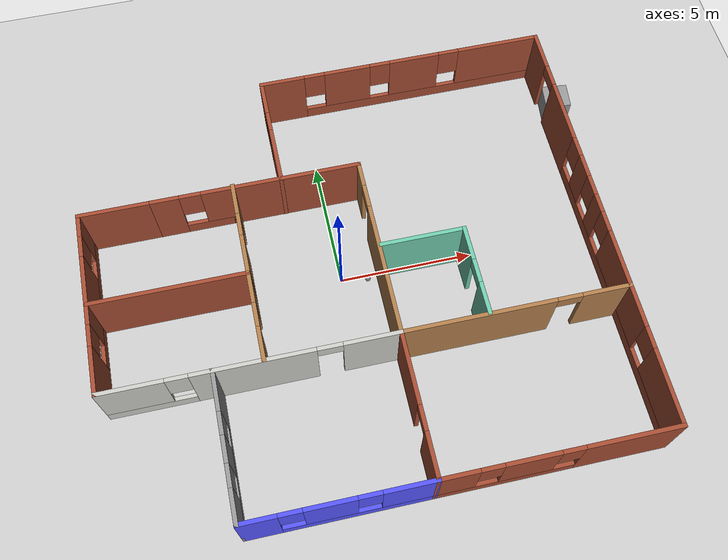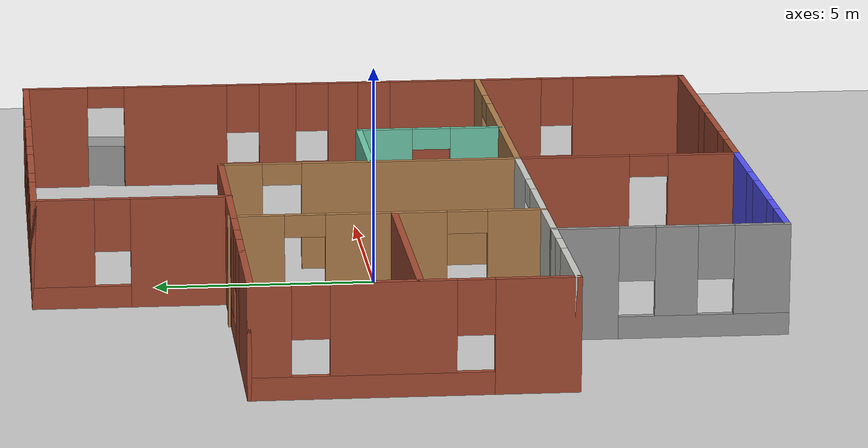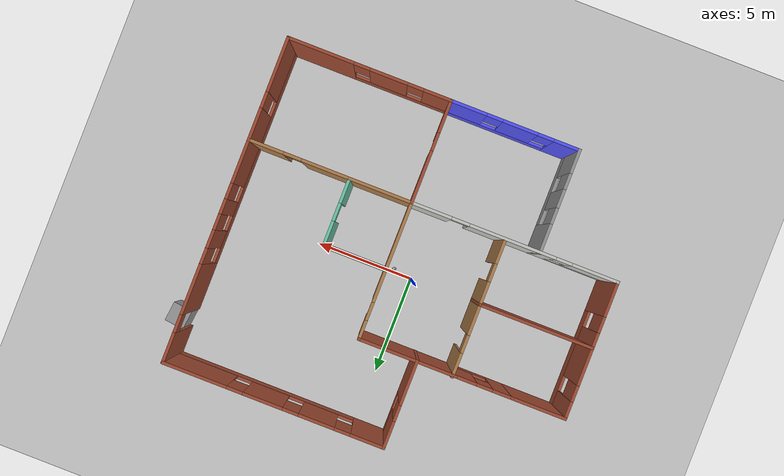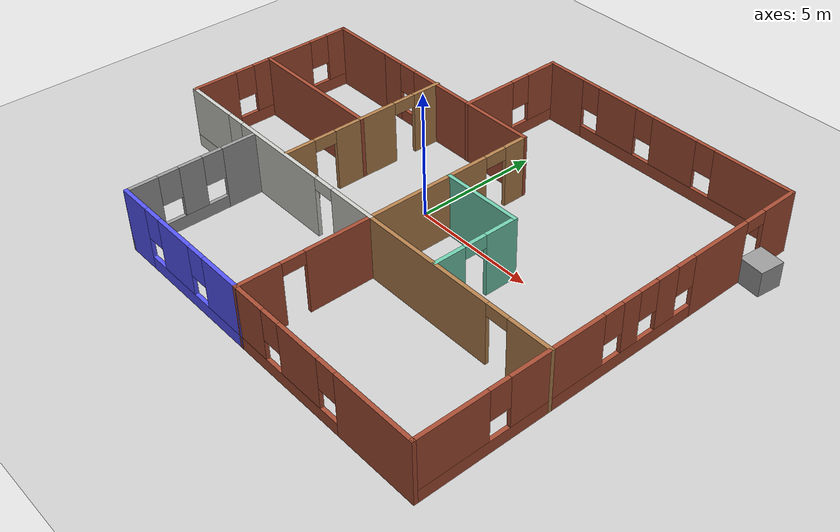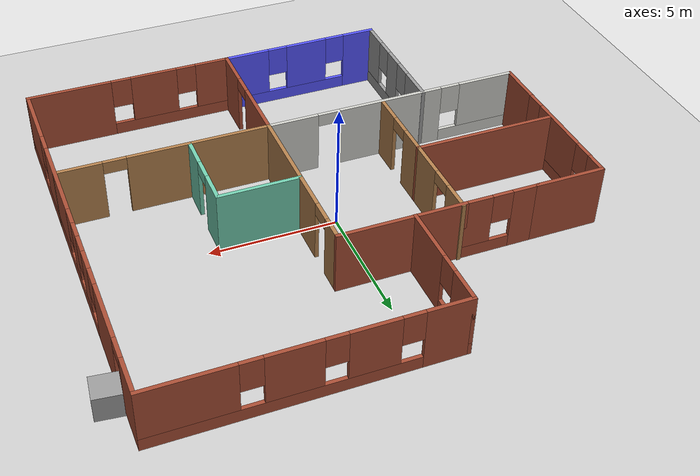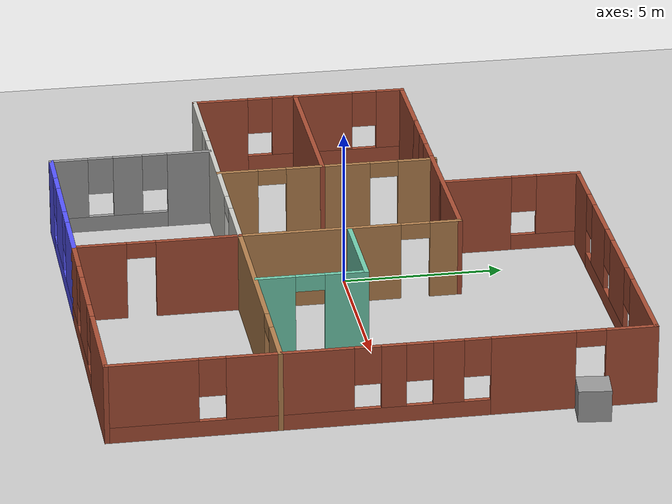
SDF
<sdf version="1.6">
 <world name="default">
  <plugin name="hello" filename="libhello.so"/>
  <light name="sun" type="directional">
   <pose>0 0 10 0 -0 0</pose>
   <diffuse>0.8 0.8 0.8 1</diffuse>
   <specular>0.2 0.2 0.2 1</specular>
   <attenuation>
    <range>1000</range>
    <constant>0.9</constant>
    <linear>0.01</linear>
    <quadratic>0.001</quadratic>
   </attenuation>
   <direction>-0.5 0.1 -0.9</direction>
  </light>
  <model name="ground_plane">
   <static>1</static>
   <link name="link">
    <collision name="collision">
     <geometry><plane><normal>0 0 1</normal><size>100 100</size></plane></geometry>
     <surface>
      <contact><collide_bitmask>65535</collide_bitmask></contact>
      <friction><ode><mu>100</mu><mu2>50</mu2></ode></friction>
     </surface>
    </collision>
    <visual name="visual">
     <cast_shadows>0</cast_shadows>
     <geometry><plane><normal>0 0 1</normal><size>100 100</size></plane></geometry>
     <material>
      <script><uri>file://media/materials/scripts/gazebo.material</uri><name>Gazebo/Grey</name></script>
     </material>
    </visual>
   </link>
  </model>
  <gravity>0 0 -9.8</gravity>
  <magnetic_field>6e-06 2.3e-05 -4.2e-05</magnetic_field>
  <atmosphere type="adiabatic"/>
  <physics name="default_physics" default="0" type="ode">
   <max_step_size>0.001</max_step_size>
   <real_time_factor>1</real_time_factor>
   <real_time_update_rate>1000</real_time_update_rate>
  </physics>
  <scene><ambient>0.4 0.4 0.4 1</ambient><background>0.7 0.7 0.7 1</background><shadows>1</shadows></scene>
  <spherical_coordinates>
   <surface_model>EARTH_WGS84</surface_model>
   <latitude_deg>0</latitude_deg>
   <longitude_deg>0</longitude_deg>
   <elevation>0</elevation>
   <heading_deg>0</heading_deg>
  </spherical_coordinates>
  <model name="my_building">
   <pose>0.3259 -0.4257 0 0 -0 0</pose>
   <link name="Wall_101">
    <pose>-1.83329 5.97867 0 0 -0 1.5708</pose>
    <visual name="Wall_101_Visual_0">
     <pose>-1.10979 0 1.25 0 -0 0</pose>
     <geometry><box><size>2.28042 0.15 2.5</size></box></geometry>
     <material>
      <script><uri>file://media/materials/scripts/gazebo.material</uri><name>Gazebo/Bricks</name></script>
      <ambient>1 1 1 1</ambient>
     </material>
     <meta><layer>0</layer></meta>
    </visual>
    <collision name="Wall_101_Collision_0">
     <geometry><box><size>2.28042 0.15 2.5</size></box></geometry>
     <pose>-1.10979 0 1.25 0 -0 0</pose>
    </collision>
    <visual name="Wall_101_Visual_1">
     <pose>1.14021 0 0.25 0 -0 0</pose>
     <geometry><box><size>2.21958 0.15 0.5</size></box></geometry>
     <material>
      <script><uri>file://media/materials/scripts/gazebo.material</uri><name>Gazebo/Bricks</name></script>
      <ambient>1 1 1 1</ambient>
     </material>
     <meta><layer>0</layer></meta>
    </visual>
    <collision name="Wall_101_Collision_1">
     <geometry><box><size>2.21958 0.15 0.5</size></box></geometry>
     <pose>1.14021 0 0.25 0 -0 0</pose>
    </collision>
    <visual name="Wall_101_Visual_2">
     <pose>1.54021 0 1.5 0 -0 0</pose>
     <geometry><box><size>1.41958 0.15 2</size></box></geometry>
     <material>
      <script><uri>file://media/materials/scripts/gazebo.material</uri><name>Gazebo/Bricks</name></script>
      <ambient>1 1 1 1</ambient>
     </material>
     <meta><layer>0</layer></meta>
    </visual>
    <collision name="Wall_101_Collision_2">
     <geometry><box><size>1.41958 0.15 2</size></box></geometry>
     <pose>1.54021 0 1.5 0 -0 0</pose>
    </collision>
    <visual name="Wall_101_Visual_3">
     <pose>0.430422 0 1.9 0 -0 0</pose>
     <geometry><box><size>0.8 0.15 1.2</size></box></geometry>
     <material>
      <script><uri>file://media/materials/scripts/gazebo.material</uri><name>Gazebo/Bricks</name></script>
      <ambient>1 1 1 1</ambient>
     </material>
     <meta><layer>0</layer></meta>
    </visual>
    <collision name="Wall_101_Collision_3">
     <geometry><box><size>0.8 0.15 1.2</size></box></geometry>
     <pose>0.430422 0 1.9 0 -0 0</pose>
    </collision>
   </link>
   <link name="Wall_102">
    <pose>3.71671 8.15367 0 0 -0 0</pose>
    <visual name="Wall_102_Visual_0">
     <pose>-4.74488 0 1.25 0 -0 0</pose>
     <geometry><box><size>1.76025 0.15 2.5</size></box></geometry>
     <material>
      <script><uri>file://media/materials/scripts/gazebo.material</uri><name>Gazebo/Bricks</name></script>
      <ambient>1 1 1 1</ambient>
     </material>
     <meta><layer>0</layer></meta>
    </visual>
    <collision name="Wall_102_Collision_0">
     <geometry><box><size>1.76025 0.15 2.5</size></box></geometry>
     <pose>-4.74488 0 1.25 0 -0 0</pose>
    </collision>
    <visual name="Wall_102_Visual_1">
     <pose>0.880123 0 0.25 0 -0 0</pose>
     <geometry><box><size>9.48976 0.15 0.5</size></box></geometry>
     <material>
      <script><uri>file://media/materials/scripts/gazebo.material</uri><name>Gazebo/Bricks</name></script>
      <ambient>1 1 1 1</ambient>
     </material>
     <meta><layer>0</layer></meta>
    </visual>
    <collision name="Wall_102_Collision_1">
     <geometry><box><size>9.48976 0.15 0.5</size></box></geometry>
     <pose>0.880123 0 0.25 0 -0 0</pose>
    </collision>
    <visual name="Wall_102_Visual_2">
     <pose>-2.15608 0 1.5 0 -0 0</pose>
     <geometry><box><size>1.81735 0.15 2</size></box></geometry>
     <material>
      <script><uri>file://media/materials/scripts/gazebo.material</uri><name>Gazebo/Bricks</name></script>
      <ambient>1 1 1 1</ambient>
     </material>
     <meta><layer>0</layer></meta>
    </visual>
    <collision name="Wall_102_Collision_2">
     <geometry><box><size>1.81735 0.15 2</size></box></geometry>
     <pose>-2.15608 0 1.5 0 -0 0</pose>
    </collision>
    <visual name="Wall_102_Visual_3">
     <pose>0.547086 0 1.5 0 -0 0</pose>
     <geometry><box><size>1.98898 0.15 2</size></box></geometry>
     <material>
      <script><uri>file://media/materials/scripts/gazebo.material</uri><name>Gazebo/Bricks</name></script>
      <ambient>1 1 1 1</ambient>
     </material>
     <meta><layer>0</layer></meta>
    </visual>
    <collision name="Wall_102_Collision_3">
     <geometry><box><size>1.98898 0.15 2</size></box></geometry>
     <pose>0.547086 0 1.5 0 -0 0</pose>
    </collision>
    <visual name="Wall_102_Visual_4">
     <pose>3.98329 0 1.5 0 -0 0</pose>
     <geometry><box><size>3.28342 0.15 2</size></box></geometry>
     <material>
      <script><uri>file://media/materials/scripts/gazebo.material</uri><name>Gazebo/Bricks</name></script>
      <ambient>1 1 1 1</ambient>
     </material>
     <meta><layer>0</layer></meta>
    </visual>
    <collision name="Wall_102_Collision_4">
     <geometry><box><size>3.28342 0.15 2</size></box></geometry>
     <pose>3.98329 0 1.5 0 -0 0</pose>
    </collision>
    <visual name="Wall_102_Visual_5">
     <pose>-3.46475 0 1.9 0 -0 0</pose>
     <geometry><box><size>0.8 0.15 1.2</size></box></geometry>
     <material>
      <script><uri>file://media/materials/scripts/gazebo.material</uri><name>Gazebo/Bricks</name></script>
      <ambient>1 1 1 1</ambient>
     </material>
     <meta><layer>0</layer></meta>
    </visual>
    <collision name="Wall_102_Collision_5">
     <geometry><box><size>0.8 0.15 1.2</size></box></geometry>
     <pose>-3.46475 0 1.9 0 -0 0</pose>
    </collision>
    <visual name="Wall_102_Visual_6">
     <pose>-0.847404 0 1.9 0 -0 0</pose>
     <geometry><box><size>0.8 0.15 1.2</size></box></geometry>
     <material>
      <script><uri>file://media/materials/scripts/gazebo.material</uri><name>Gazebo/Bricks</name></script>
      <ambient>1 1 1 1</ambient>
     </material>
     <meta><layer>0</layer></meta>
    </visual>
    <collision name="Wall_102_Collision_6">
     <geometry><box><size>0.8 0.15 1.2</size></box></geometry>
     <pose>-0.847404 0 1.9 0 -0 0</pose>
    </collision>
    <visual name="Wall_102_Visual_7">
     <pose>1.94158 0 1.9 0 -0 0</pose>
     <geometry><box><size>0.8 0.15 1.2</size></box></geometry>
     <material>
      <script><uri>file://media/materials/scripts/gazebo.material</uri><name>Gazebo/Bricks</name></script>
      <ambient>1 1 1 1</ambient>
     </material>
     <meta><layer>0</layer></meta>
    </visual>
    <collision name="Wall_102_Collision_7">
     <geometry><box><size>0.8 0.15 1.2</size></box></geometry>
     <pose>1.94158 0 1.9 0 -0 0</pose>
    </collision>
   </link>
   <link name="Wall_103">
    <pose>9.26671 0.021332 0 0 0 -1.5708</pose>
    <visual name="Wall_103_Visual_0">
     <pose>-7.41528 0 1.25 0 -0 0</pose>
     <geometry><box><size>1.58411 0.15 2.5</size></box></geometry>
     <material>
      <script><uri>file://media/materials/scripts/gazebo.material</uri><name>Gazebo/Bricks</name></script>
      <ambient>1 1 1 1</ambient>
     </material>
     <meta><layer>0</layer></meta>
    </visual>
    <collision name="Wall_103_Collision_0">
     <geometry><box><size>1.58411 0.15 2.5</size></box></geometry>
     <pose>-7.41528 0 1.25 0 -0 0</pose>
    </collision>
    <visual name="Wall_103_Visual_1">
     <pose>-4.45338 0 1.25 0 -0 0</pose>
     <geometry><box><size>2.53968 0.15 2.5</size></box></geometry>
     <material>
      <script><uri>file://media/materials/scripts/gazebo.material</uri><name>Gazebo/Bricks</name></script>
      <ambient>1 1 1 1</ambient>
     </material>
     <meta><layer>0</layer></meta>
    </visual>
    <collision name="Wall_103_Collision_1">
     <geometry><box><size>2.53968 0.15 2.5</size></box></geometry>
     <pose>-4.45338 0 1.25 0 -0 0</pose>
    </collision>
    <visual name="Wall_103_Visual_2">
     <pose>2.5119 0 0.25 0 -0 0</pose>
     <geometry><box><size>11.3909 0.15 0.5</size></box></geometry>
     <material>
      <script><uri>file://media/materials/scripts/gazebo.material</uri><name>Gazebo/Bricks</name></script>
      <ambient>1 1 1 1</ambient>
     </material>
     <meta><layer>0</layer></meta>
    </visual>
    <collision name="Wall_103_Collision_2">
     <geometry><box><size>11.3909 0.15 0.5</size></box></geometry>
     <pose>2.5119 0 0.25 0 -0 0</pose>
    </collision>
    <visual name="Wall_103_Visual_3">
     <pose>-1.92539 0 1.5 0 -0 0</pose>
     <geometry><box><size>0.916295 0.15 2</size></box></geometry>
     <material>
      <script><uri>file://media/materials/scripts/gazebo.material</uri><name>Gazebo/Bricks</name></script>
      <ambient>1 1 1 1</ambient>
     </material>
     <meta><layer>0</layer></meta>
    </visual>
    <collision name="Wall_103_Collision_3">
     <geometry><box><size>0.916295 0.15 2</size></box></geometry>
     <pose>-1.92539 0 1.5 0 -0 0</pose>
    </collision>
    <visual name="Wall_103_Visual_4">
     <pose>-0.294908 0 1.5 0 -0 0</pose>
     <geometry><box><size>0.744666 0.15 2</size></box></geometry>
     <material>
      <script><uri>file://media/materials/scripts/gazebo.material</uri><name>Gazebo/Bricks</name></script>
      <ambient>1 1 1 1</ambient>
     </material>
     <meta><layer>0</layer></meta>
    </visual>
    <collision name="Wall_103_Collision_4">
     <geometry><box><size>0.744666 0.15 2</size></box></geometry>
     <pose>-0.294908 0 1.5 0 -0 0</pose>
    </collision>
    <visual name="Wall_103_Visual_5">
     <pose>2.76753 0 1.5 0 -0 0</pose>
     <geometry><box><size>3.78021 0.15 2</size></box></geometry>
     <material>
      <script><uri>file://media/materials/scripts/gazebo.material</uri><name>Gazebo/Bricks</name></script>
      <ambient>1 1 1 1</ambient>
     </material>
     <meta><layer>0</layer></meta>
    </visual>
    <collision name="Wall_103_Collision_5">
     <geometry><box><size>3.78021 0.15 2</size></box></geometry>
     <pose>2.76753 0 1.5 0 -0 0</pose>
    </collision>
    <visual name="Wall_103_Visual_6">
     <pose>6.83249 0 1.5 0 -0 0</pose>
     <geometry><box><size>2.7497 0.15 2</size></box></geometry>
     <material>
      <script><uri>file://media/materials/scripts/gazebo.material</uri><name>Gazebo/Bricks</name></script>
      <ambient>1 1 1 1</ambient>
     </material>
     <meta><layer>0</layer></meta>
    </visual>
    <collision name="Wall_103_Collision_6">
     <geometry><box><size>2.7497 0.15 2</size></box></geometry>
     <pose>6.83249 0 1.5 0 -0 0</pose>
    </collision>
    <visual name="Wall_103_Visual_7">
     <pose>-2.78354 0 1.9 0 -0 0</pose>
     <geometry><box><size>0.8 0.15 1.2</size></box></geometry>
     <material>
      <script><uri>file://media/materials/scripts/gazebo.material</uri><name>Gazebo/Bricks</name></script>
      <ambient>1 1 1 1</ambient>
     </material>
     <meta><layer>0</layer></meta>
    </visual>
    <collision name="Wall_103_Collision_7">
     <geometry><box><size>0.8 0.15 1.2</size></box></geometry>
     <pose>-2.78354 0 1.9 0 -0 0</pose>
    </collision>
    <visual name="Wall_103_Visual_8">
     <pose>-1.06724 0 1.9 0 -0 0</pose>
     <geometry><box><size>0.8 0.15 1.2</size></box></geometry>
     <material>
      <script><uri>file://media/materials/scripts/gazebo.material</uri><name>Gazebo/Bricks</name></script>
      <ambient>1 1 1 1</ambient>
     </material>
     <meta><layer>0</layer></meta>
    </visual>
    <collision name="Wall_103_Collision_8">
     <geometry><box><size>0.8 0.15 1.2</size></box></geometry>
     <pose>-1.06724 0 1.9 0 -0 0</pose>
    </collision>
    <visual name="Wall_103_Visual_9">
     <pose>0.477424 0 1.9 0 -0 0</pose>
     <geometry><box><size>0.8 0.15 1.2</size></box></geometry>
     <material>
      <script><uri>file://media/materials/scripts/gazebo.material</uri><name>Gazebo/Bricks</name></script>
      <ambient>1 1 1 1</ambient>
     </material>
     <meta><layer>0</layer></meta>
    </visual>
    <collision name="Wall_103_Collision_9">
     <geometry><box><size>0.8 0.15 1.2</size></box></geometry>
     <pose>0.477424 0 1.9 0 -0 0</pose>
    </collision>
    <visual name="Wall_103_Visual_10">
     <pose>5.05763 0 1.9 0 -0 0</pose>
     <geometry><box><size>0.8 0.15 1.2</size></box></geometry>
     <material>
      <script><uri>file://media/materials/scripts/gazebo.material</uri><name>Gazebo/Bricks</name></script>
      <ambient>1 1 1 1</ambient>
     </material>
     <meta><layer>0</layer></meta>
    </visual>
    <collision name="Wall_103_Collision_10">
     <geometry><box><size>0.8 0.15 1.2</size></box></geometry>
     <pose>5.05763 0 1.9 0 -0 0</pose>
    </collision>
    <visual name="Wall_103_Visual_11">
     <pose>-6.17322 0 2.25 0 -0 0</pose>
     <geometry><box><size>0.9 0.15 0.5</size></box></geometry>
     <material>
      <script><uri>file://media/materials/scripts/gazebo.material</uri><name>Gazebo/Bricks</name></script>
      <ambient>1 1 1 1</ambient>
     </material>
     <meta><layer>0</layer></meta>
    </visual>
    <collision name="Wall_103_Collision_11">
     <geometry><box><size>0.9 0.15 0.5</size></box></geometry>
     <pose>-6.17322 0 2.25 0 -0 0</pose>
    </collision>
   </link>
   <link name="Wall_104">
    <pose>5.1749 -8.15365 0 0 -0 3.14159</pose>
    <visual name="Wall_104_Visual_0">
     <pose>-2.47424 0 1.25 0 -0 0</pose>
     <geometry><box><size>3.38515 0.15 2.5</size></box></geometry>
     <material>
      <script><uri>file://media/materials/scripts/gazebo.material</uri><name>Gazebo/Bricks</name></script>
      <ambient>1 1 1 1</ambient>
     </material>
     <meta><layer>0</layer></meta>
    </visual>
    <collision name="Wall_104_Collision_0">
     <geometry><box><size>3.38515 0.15 2.5</size></box></geometry>
     <pose>-2.47424 0 1.25 0 -0 0</pose>
    </collision>
    <visual name="Wall_104_Visual_1">
     <pose>1.69257 0 0.25 0 -0 0</pose>
     <geometry><box><size>4.94847 0.15 0.5</size></box></geometry>
     <material>
      <script><uri>file://media/materials/scripts/gazebo.material</uri><name>Gazebo/Bricks</name></script>
      <ambient>1 1 1 1</ambient>
     </material>
     <meta><layer>0</layer></meta>
    </visual>
    <collision name="Wall_104_Collision_1">
     <geometry><box><size>4.94847 0.15 0.5</size></box></geometry>
     <pose>1.69257 0 0.25 0 -0 0</pose>
    </collision>
    <visual name="Wall_104_Visual_2">
     <pose>0.969374 0 1.5 0 -0 0</pose>
     <geometry><box><size>1.90207 0.15 2</size></box></geometry>
     <material>
      <script><uri>file://media/materials/scripts/gazebo.material</uri><name>Gazebo/Bricks</name></script>
      <ambient>1 1 1 1</ambient>
     </material>
     <meta><layer>0</layer></meta>
    </visual>
    <collision name="Wall_104_Collision_2">
     <geometry><box><size>1.90207 0.15 2</size></box></geometry>
     <pose>0.969374 0 1.5 0 -0 0</pose>
    </collision>
    <visual name="Wall_104_Visual_3">
     <pose>3.44361 0 1.5 0 -0 0</pose>
     <geometry><box><size>1.4464 0.15 2</size></box></geometry>
     <material>
      <script><uri>file://media/materials/scripts/gazebo.material</uri><name>Gazebo/Bricks</name></script>
      <ambient>1 1 1 1</ambient>
     </material>
     <meta><layer>0</layer></meta>
    </visual>
    <collision name="Wall_104_Collision_3">
     <geometry><box><size>1.4464 0.15 2</size></box></geometry>
     <pose>3.44361 0 1.5 0 -0 0</pose>
    </collision>
    <visual name="Wall_104_Visual_4">
     <pose>-0.381661 0 1.9 0 -0 0</pose>
     <geometry><box><size>0.8 0.15 1.2</size></box></geometry>
     <material>
      <script><uri>file://media/materials/scripts/gazebo.material</uri><name>Gazebo/Bricks</name></script>
      <ambient>1 1 1 1</ambient>
     </material>
     <meta><layer>0</layer></meta>
    </visual>
    <collision name="Wall_104_Collision_4">
     <geometry><box><size>0.8 0.15 1.2</size></box></geometry>
     <pose>-0.381661 0 1.9 0 -0 0</pose>
    </collision>
    <visual name="Wall_104_Visual_5">
     <pose>2.32041 0 1.9 0 -0 0</pose>
     <geometry><box><size>0.8 0.15 1.2</size></box></geometry>
     <material>
      <script><uri>file://media/materials/scripts/gazebo.material</uri><name>Gazebo/Bricks</name></script>
      <ambient>1 1 1 1</ambient>
     </material>
     <meta><layer>0</layer></meta>
    </visual>
    <collision name="Wall_104_Collision_5">
     <geometry><box><size>0.8 0.15 1.2</size></box></geometry>
     <pose>2.32041 0 1.9 0 -0 0</pose>
    </collision>
   </link>
   <link name="Wall_105">
    <pose>1.0831 -5.57313 0 0 -0 1.5708</pose>
    <visual name="Wall_105_Visual_0">
     <pose>-1.79077 0 1.25 0 -0 0</pose>
     <geometry><box><size>1.64412 0.15 2.5</size></box></geometry>
     <material>
      <script><uri>file://media/materials/scripts/gazebo.material</uri><name>Gazebo/Bricks</name></script>
      <ambient>1 1 1 1</ambient>
     </material>
     <meta><layer>0</layer></meta>
    </visual>
    <collision name="Wall_105_Collision_0">
     <geometry><box><size>1.64412 0.15 2.5</size></box></geometry>
     <pose>-1.79077 0 1.25 0 -0 0</pose>
    </collision>
    <visual name="Wall_105_Visual_1">
     <pose>1.27206 0 1.25 0 -0 0</pose>
     <geometry><box><size>2.68155 0.15 2.5</size></box></geometry>
     <material>
      <script><uri>file://media/materials/scripts/gazebo.material</uri><name>Gazebo/Bricks</name></script>
      <ambient>1 1 1 1</ambient>
     </material>
     <meta><layer>0</layer></meta>
    </visual>
    <collision name="Wall_105_Collision_1">
     <geometry><box><size>2.68155 0.15 2.5</size></box></geometry>
     <pose>1.27206 0 1.25 0 -0 0</pose>
    </collision>
    <visual name="Wall_105_Visual_2">
     <pose>-0.518712 0 2.25 0 -0 0</pose>
     <geometry><box><size>0.9 0.15 0.5</size></box></geometry>
     <material>
      <script><uri>file://media/materials/scripts/gazebo.material</uri><name>Gazebo/Bricks</name></script>
      <ambient>1 1 1 1</ambient>
     </material>
     <meta><layer>0</layer></meta>
    </visual>
    <collision name="Wall_105_Collision_2">
     <geometry><box><size>0.9 0.15 0.5</size></box></geometry>
     <pose>-0.518712 0 2.25 0 -0 0</pose>
    </collision>
   </link>
   <link name="Wall_107">
    <pose>5.1751 -3.0353 0 0 -0 0</pose>
    <visual name="Wall_107_Visual_0">
     <pose>-1.35884 0 1.25 0 -0 0</pose>
     <geometry><box><size>5.61594 0.15 2.5</size></box></geometry>
     <material>
      <script><uri>file://media/materials/scripts/gazebo.material</uri><name>Gazebo/Wood</name></script>
      <ambient>1 1 1 1</ambient>
     </material>
     <meta><layer>0</layer></meta>
    </visual>
    <collision name="Wall_107_Collision_0">
     <geometry><box><size>5.61594 0.15 2.5</size></box></geometry>
     <pose>-1.35884 0 1.25 0 -0 0</pose>
    </collision>
    <visual name="Wall_107_Visual_1">
     <pose>3.25797 0 1.25 0 -0 0</pose>
     <geometry><box><size>1.81767 0.15 2.5</size></box></geometry>
     <material>
      <script><uri>file://media/materials/scripts/gazebo.material</uri><name>Gazebo/Wood</name></script>
      <ambient>1 1 1 1</ambient>
     </material>
     <meta><layer>0</layer></meta>
    </visual>
    <collision name="Wall_107_Collision_1">
     <geometry><box><size>1.81767 0.15 2.5</size></box></geometry>
     <pose>3.25797 0 1.25 0 -0 0</pose>
    </collision>
    <visual name="Wall_107_Visual_2">
     <pose>1.89914 0 2.25 0 -0 0</pose>
     <geometry><box><size>0.9 0.15 0.5</size></box></geometry>
     <material>
      <script><uri>file://media/materials/scripts/gazebo.material</uri><name>Gazebo/Wood</name></script>
      <ambient>1 1 1 1</ambient>
     </material>
     <meta><layer>0</layer></meta>
    </visual>
    <collision name="Wall_107_Collision_2">
     <geometry><box><size>0.9 0.15 0.5</size></box></geometry>
     <pose>1.89914 0 2.25 0 -0 0</pose>
    </collision>
   </link>
   <link name="Wall_112">
    <collision name="Wall_112_Collision">
     <geometry><box><size>5.75 0.15 2.5</size></box></geometry>
     <pose>0 0 1.25 0 -0 0</pose>
    </collision>
    <visual name="Wall_112_Visual">
     <pose>0 0 1.25 0 -0 0</pose>
     <geometry><box><size>5.75 0.15 2.5</size></box></geometry>
     <material>
      <script><uri>file://media/materials/scripts/gazebo.material</uri><name>Gazebo/Bricks</name></script>
      <ambient>1 1 1 1</ambient>
     </material>
     <meta><layer>0</layer></meta>
    </visual>
    <pose>-6.43074 0.273517 0 0 -0 6.6e-05</pose>
   </link>
   <link name="Wall_113">
    <pose>-3.6309 -1.3808 0 0 0 -1.5708</pose>
    <visual name="Wall_113_Visual_0">
     <pose>-1.11174 0 1.25 0 -0 0</pose>
     <geometry><box><size>1.23552 0.15 2.5</size></box></geometry>
     <material>
      <script><uri>file://media/materials/scripts/gazebo.material</uri><name>Gazebo/Wood</name></script>
      <ambient>1 1 1 1</ambient>
     </material>
     <meta><layer>0</layer></meta>
    </visual>
    <collision name="Wall_113_Collision_0">
     <geometry><box><size>1.23552 0.15 2.5</size></box></geometry>
     <pose>-1.11174 0 1.25 0 -0 0</pose>
    </collision>
    <visual name="Wall_113_Visual_1">
     <pose>1.06776 0 1.25 0 -0 0</pose>
     <geometry><box><size>1.32347 0.15 2.5</size></box></geometry>
     <material>
      <script><uri>file://media/materials/scripts/gazebo.material</uri><name>Gazebo/Wood</name></script>
      <ambient>1 1 1 1</ambient>
     </material>
     <meta><layer>0</layer></meta>
    </visual>
    <collision name="Wall_113_Collision_1">
     <geometry><box><size>1.32347 0.15 2.5</size></box></geometry>
     <pose>1.06776 0 1.25 0 -0 0</pose>
    </collision>
    <visual name="Wall_113_Visual_2">
     <pose>-0.043975 0 2.25 0 -0 0</pose>
     <geometry><box><size>0.9 0.15 0.5</size></box></geometry>
     <material>
      <script><uri>file://media/materials/scripts/gazebo.material</uri><name>Gazebo/Wood</name></script>
      <ambient>1 1 1 1</ambient>
     </material>
     <meta><layer>0</layer></meta>
    </visual>
    <collision name="Wall_113_Collision_2">
     <geometry><box><size>0.9 0.15 0.5</size></box></geometry>
     <pose>-0.043975 0 2.25 0 -0 0</pose>
    </collision>
   </link>
   <link name="Wall_119">
    <pose>-3.63074 2.07352 0 0 -0 1.57071</pose>
    <visual name="Wall_119_Visual_0">
     <pose>-1.07564 0 1.25 0 -0 0</pose>
     <geometry><box><size>1.59872 0.15 2.5</size></box></geometry>
     <material>
      <script><uri>file://media/materials/scripts/gazebo.material</uri><name>Gazebo/Wood</name></script>
      <ambient>1 1 1 1</ambient>
     </material>
     <meta><layer>0</layer></meta>
    </visual>
    <collision name="Wall_119_Collision_0">
     <geometry><box><size>1.59872 0.15 2.5</size></box></geometry>
     <pose>-1.07564 0 1.25 0 -0 0</pose>
    </collision>
    <visual name="Wall_119_Visual_1">
     <pose>1.24936 0 1.25 0 -0 0</pose>
     <geometry><box><size>1.25128 0.15 2.5</size></box></geometry>
     <material>
      <script><uri>file://media/materials/scripts/gazebo.material</uri><name>Gazebo/Wood</name></script>
      <ambient>1 1 1 1</ambient>
     </material>
     <meta><layer>0</layer></meta>
    </visual>
    <collision name="Wall_119_Collision_1">
     <geometry><box><size>1.25128 0.15 2.5</size></box></geometry>
     <pose>1.24936 0 1.25 0 -0 0</pose>
    </collision>
    <visual name="Wall_119_Visual_2">
     <pose>0.173722 0 2.25 0 -0 0</pose>
     <geometry><box><size>0.9 0.15 0.5</size></box></geometry>
     <material>
      <script><uri>file://media/materials/scripts/gazebo.material</uri><name>Gazebo/Wood</name></script>
      <ambient>1 1 1 1</ambient>
     </material>
     <meta><layer>0</layer></meta>
    </visual>
    <collision name="Wall_119_Collision_2">
     <geometry><box><size>0.9 0.15 0.5</size></box></geometry>
     <pose>0.173722 0 2.25 0 -0 0</pose>
    </collision>
   </link>
   <link name="Wall_121">
    <collision name="Wall_121_Collision">
     <geometry><box><size>3.25 0.15 2.5</size></box></geometry>
     <pose>0 0 1.25 0 -0 0</pose>
    </collision>
    <visual name="Wall_121_Visual">
     <pose>0 0 1.25 0 -0 0</pose>
     <geometry><box><size>3.25 0.15 2.5</size></box></geometry>
     <material>
      <script><uri>file://media/materials/scripts/gazebo.material</uri><name>Gazebo/Grey</name></script>
      <ambient>0.435294 0.796078 0.67451 1</ambient>
     </material>
     <meta><layer>0</layer></meta>
    </visual>
    <pose>2.66011 0.359148 0 0 -0 0</pose>
   </link>
   <link name="Wall_122">
    <pose>4.21011 -1.31585 0 0 0 -1.5708</pose>
    <visual name="Wall_122_Visual_0">
     <pose>-1.07935 0 1.25 0 -0 0</pose>
     <geometry><box><size>1.34129 0.15 2.5</size></box></geometry>
     <material>
      <script><uri>file://media/materials/scripts/gazebo.material</uri><name>Gazebo/Grey</name></script>
      <ambient>0.435294 0.796078 0.67451 1</ambient>
     </material>
     <meta><layer>0</layer></meta>
    </visual>
    <collision name="Wall_122_Collision_0">
     <geometry><box><size>1.34129 0.15 2.5</size></box></geometry>
     <pose>-1.07935 0 1.25 0 -0 0</pose>
    </collision>
    <visual name="Wall_122_Visual_1">
     <pose>1.12065 0 1.25 0 -0 0</pose>
     <geometry><box><size>1.2587 0.15 2.5</size></box></geometry>
     <material>
      <script><uri>file://media/materials/scripts/gazebo.material</uri><name>Gazebo/Grey</name></script>
      <ambient>0.435294 0.796078 0.67451 1</ambient>
     </material>
     <meta><layer>0</layer></meta>
    </visual>
    <collision name="Wall_122_Collision_1">
     <geometry><box><size>1.2587 0.15 2.5</size></box></geometry>
     <pose>1.12065 0 1.25 0 -0 0</pose>
    </collision>
    <visual name="Wall_122_Visual_2">
     <pose>0.041295 0 2.25 0 -0 0</pose>
     <geometry><box><size>0.9 0.15 0.5</size></box></geometry>
     <material>
      <script><uri>file://media/materials/scripts/gazebo.material</uri><name>Gazebo/Grey</name></script>
      <ambient>0.435294 0.796078 0.67451 1</ambient>
     </material>
     <meta><layer>0</layer></meta>
    </visual>
    <collision name="Wall_122_Collision_2">
     <geometry><box><size>0.9 0.15 0.5</size></box></geometry>
     <pose>0.041295 0 2.25 0 -0 0</pose>
    </collision>
   </link>
   <link name="Wall_124">
    <pose>-5.3689 -5.5918 0 0 0 -1.5708</pose>
    <visual name="Wall_124_Visual_0">
     <pose>-1.88548 0 1.25 0 -0 0</pose>
     <geometry><box><size>1.50204 0.15 2.5</size></box></geometry>
     <material>
      <script><uri>file://media/materials/scripts/gazebo.material</uri><name>Gazebo/Grey</name></script>
      <ambient>1 1 1 1</ambient>
     </material>
     <meta><layer>0</layer></meta>
    </visual>
    <collision name="Wall_124_Collision_0">
     <geometry><box><size>1.50204 0.15 2.5</size></box></geometry>
     <pose>-1.88548 0 1.25 0 -0 0</pose>
    </collision>
    <visual name="Wall_124_Visual_1">
     <pose>0.751022 0 0.25 0 -0 0</pose>
     <geometry><box><size>3.77096 0.15 0.5</size></box></geometry>
     <material>
      <script><uri>file://media/materials/scripts/gazebo.material</uri><name>Gazebo/Grey</name></script>
      <ambient>1 1 1 1</ambient>
     </material>
     <meta><layer>0</layer></meta>
    </visual>
    <collision name="Wall_124_Collision_1">
     <geometry><box><size>3.77096 0.15 0.5</size></box></geometry>
     <pose>0.751022 0 0.25 0 -0 0</pose>
    </collision>
    <visual name="Wall_124_Visual_2">
     <pose>0.133072 0 1.5 0 -0 0</pose>
     <geometry><box><size>0.935056 0.15 2</size></box></geometry>
     <material>
      <script><uri>file://media/materials/scripts/gazebo.material</uri><name>Gazebo/Grey</name></script>
      <ambient>1 1 1 1</ambient>
     </material>
     <meta><layer>0</layer></meta>
    </visual>
    <collision name="Wall_124_Collision_2">
     <geometry><box><size>0.935056 0.15 2</size></box></geometry>
     <pose>0.133072 0 1.5 0 -0 0</pose>
    </collision>
    <visual name="Wall_124_Visual_3">
     <pose>2.01855 0 1.5 0 -0 0</pose>
     <geometry><box><size>1.2359 0.15 2</size></box></geometry>
     <material>
      <script><uri>file://media/materials/scripts/gazebo.material</uri><name>Gazebo/Grey</name></script>
      <ambient>1 1 1 1</ambient>
     </material>
     <meta><layer>0</layer></meta>
    </visual>
    <collision name="Wall_124_Collision_3">
     <geometry><box><size>1.2359 0.15 2</size></box></geometry>
     <pose>2.01855 0 1.5 0 -0 0</pose>
    </collision>
    <visual name="Wall_124_Visual_4">
     <pose>-0.734456 0 1.9 0 -0 0</pose>
     <geometry><box><size>0.8 0.15 1.2</size></box></geometry>
     <material>
      <script><uri>file://media/materials/scripts/gazebo.material</uri><name>Gazebo/Grey</name></script>
      <ambient>1 1 1 1</ambient>
     </material>
     <meta><layer>0</layer></meta>
    </visual>
    <collision name="Wall_124_Collision_4">
     <geometry><box><size>0.8 0.15 1.2</size></box></geometry>
     <pose>-0.734456 0 1.9 0 -0 0</pose>
    </collision>
    <visual name="Wall_124_Visual_5">
     <pose>1.0006 0 1.9 0 -0 0</pose>
     <geometry><box><size>0.8 0.15 1.2</size></box></geometry>
     <material>
      <script><uri>file://media/materials/scripts/gazebo.material</uri><name>Gazebo/Grey</name></script>
      <ambient>1 1 1 1</ambient>
     </material>
     <meta><layer>0</layer></meta>
    </visual>
    <collision name="Wall_124_Collision_5">
     <geometry><box><size>0.8 0.15 1.2</size></box></geometry>
     <pose>1.0006 0 1.9 0 -0 0</pose>
    </collision>
   </link>
   <link name="Wall_125">
    <pose>-2.1429 -8.15347 0 0 0 -5.2e-05</pose>
    <visual name="Wall_125_Visual_0">
     <pose>-2.6209 0 1.25 0 -0 0</pose>
     <geometry><box><size>1.3602 0.15 2.5</size></box></geometry>
     <material>
      <script><uri>file://media/materials/scripts/gazebo.material</uri><name>Gazebo/Grey</name></script>
      <ambient>0.333333 0.333333 1 1</ambient>
     </material>
     <meta><layer>0</layer></meta>
    </visual>
    <collision name="Wall_125_Collision_0">
     <geometry><box><size>1.3602 0.15 2.5</size></box></geometry>
     <pose>-2.6209 0 1.25 0 -0 0</pose>
    </collision>
    <visual name="Wall_125_Visual_1">
     <pose>0.680102 0 0.25 0 -0 0</pose>
     <geometry><box><size>5.2418 0.15 0.5</size></box></geometry>
     <material>
      <script><uri>file://media/materials/scripts/gazebo.material</uri><name>Gazebo/Grey</name></script>
      <ambient>0.333333 0.333333 1 1</ambient>
     </material>
     <meta><layer>0</layer></meta>
    </visual>
    <collision name="Wall_125_Collision_1">
     <geometry><box><size>5.2418 0.15 0.5</size></box></geometry>
     <pose>0.680102 0 0.25 0 -0 0</pose>
    </collision>
    <visual name="Wall_125_Visual_2">
     <pose>-0.260668 0 1.5 0 -0 0</pose>
     <geometry><box><size>1.76026 0.15 2</size></box></geometry>
     <material>
      <script><uri>file://media/materials/scripts/gazebo.material</uri><name>Gazebo/Grey</name></script>
      <ambient>0.333333 0.333333 1 1</ambient>
     </material>
     <meta><layer>0</layer></meta>
    </visual>
    <collision name="Wall_125_Collision_2">
     <geometry><box><size>1.76026 0.15 2</size></box></geometry>
     <pose>-0.260668 0 1.5 0 -0 0</pose>
    </collision>
    <visual name="Wall_125_Visual_3">
     <pose>2.36023 0 1.5 0 -0 0</pose>
     <geometry><box><size>1.88154 0.15 2</size></box></geometry>
     <material>
      <script><uri>file://media/materials/scripts/gazebo.material</uri><name>Gazebo/Grey</name></script>
      <ambient>0.333333 0.333333 1 1</ambient>
     </material>
     <meta><layer>0</layer></meta>
    </visual>
    <collision name="Wall_125_Collision_3">
     <geometry><box><size>1.88154 0.15 2</size></box></geometry>
     <pose>2.36023 0 1.5 0 -0 0</pose>
    </collision>
    <visual name="Wall_125_Visual_4">
     <pose>-1.5408 0 1.9 0 -0 0</pose>
     <geometry><box><size>0.8 0.15 1.2</size></box></geometry>
     <material>
      <script><uri>file://media/materials/scripts/gazebo.material</uri><name>Gazebo/Grey</name></script>
      <ambient>0.333333 0.333333 1 1</ambient>
     </material>
     <meta><layer>0</layer></meta>
    </visual>
    <collision name="Wall_125_Collision_4">
     <geometry><box><size>0.8 0.15 1.2</size></box></geometry>
     <pose>-1.5408 0 1.9 0 -0 0</pose>
    </collision>
    <visual name="Wall_125_Visual_5">
     <pose>1.01946 0 1.9 0 -0 0</pose>
     <geometry><box><size>0.8 0.15 1.2</size></box></geometry>
     <material>
      <script><uri>file://media/materials/scripts/gazebo.material</uri><name>Gazebo/Grey</name></script>
      <ambient>0.333333 0.333333 1 1</ambient>
     </material>
     <meta><layer>0</layer></meta>
    </visual>
    <collision name="Wall_125_Collision_5">
     <geometry><box><size>0.8 0.15 1.2</size></box></geometry>
     <pose>1.01946 0 1.9 0 -0 0</pose>
    </collision>
   </link>
   <link name="Wall_90">
    <pose>-5.19173 3.81502 0 0 -0 0</pose>
    <visual name="Wall_90_Visual_0">
     <pose>-0.964083 0 1.25 0 -0 0</pose>
     <geometry><box><size>1.07183 0.15 2.5</size></box></geometry>
     <material>
      <script><uri>file://media/materials/scripts/gazebo.material</uri><name>Gazebo/Bricks</name></script>
      <ambient>1 1 1 1</ambient>
     </material>
     <meta><layer>0</layer></meta>
    </visual>
    <collision name="Wall_90_Collision_0">
     <geometry><box><size>1.07183 0.15 2.5</size></box></geometry>
     <pose>-0.964083 0 1.25 0 -0 0</pose>
    </collision>
    <visual name="Wall_90_Visual_1">
     <pose>0.535917 0 0.25 0 -0 0</pose>
     <geometry><box><size>1.92817 0.15 0.5</size></box></geometry>
     <material>
      <script><uri>file://media/materials/scripts/gazebo.material</uri><name>Gazebo/Bricks</name></script>
      <ambient>1 1 1 1</ambient>
     </material>
     <meta><layer>0</layer></meta>
    </visual>
    <collision name="Wall_90_Collision_1">
     <geometry><box><size>1.92817 0.15 0.5</size></box></geometry>
     <pose>0.535917 0 0.25 0 -0 0</pose>
    </collision>
    <visual name="Wall_90_Visual_2">
     <pose>0.935917 0 1.5 0 -0 0</pose>
     <geometry><box><size>1.12817 0.15 2</size></box></geometry>
     <material>
      <script><uri>file://media/materials/scripts/gazebo.material</uri><name>Gazebo/Bricks</name></script>
      <ambient>1 1 1 1</ambient>
     </material>
     <meta><layer>0</layer></meta>
    </visual>
    <collision name="Wall_90_Collision_2">
     <geometry><box><size>1.12817 0.15 2</size></box></geometry>
     <pose>0.935917 0 1.5 0 -0 0</pose>
    </collision>
    <visual name="Wall_90_Visual_3">
     <pose>-0.028166 0 1.9 0 -0 0</pose>
     <geometry><box><size>0.8 0.15 1.2</size></box></geometry>
     <material>
      <script><uri>file://media/materials/scripts/gazebo.material</uri><name>Gazebo/Bricks</name></script>
      <ambient>1 1 1 1</ambient>
     </material>
     <meta><layer>0</layer></meta>
    </visual>
    <collision name="Wall_90_Collision_3">
     <geometry><box><size>0.8 0.15 1.2</size></box></geometry>
     <pose>-0.028166 0 1.9 0 -0 0</pose>
    </collision>
   </link>
   <link name="Wall_94">
    <collision name="Wall_94_Collision">
     <geometry><box><size>5 0.15 2.5</size></box></geometry>
     <pose>0 0 1.25 0 -0 0</pose>
    </collision>
    <visual name="Wall_94_Visual">
     <pose>0 0 1.25 0 -0 0</pose>
     <geometry><box><size>5 0.15 2.5</size></box></geometry>
     <material>
      <script><uri>file://media/materials/scripts/gazebo.material</uri><name>Gazebo/Bricks</name></script>
      <ambient>1 1 1 1</ambient>
     </material>
     <meta><layer>0</layer></meta>
    </visual>
    <pose>-1.34173 3.81502 0 0 -0 0</pose>
   </link>
   <link name="Wall_95">
    <pose>1.08318 0.389859 0 0 0 -1.57082</pose>
    <visual name="Wall_95_Visual_0">
     <pose>-2.98939 0 1.25 0 -0 0</pose>
     <geometry><box><size>1.02122 0.15 2.5</size></box></geometry>
     <material>
      <script><uri>file://media/materials/scripts/gazebo.material</uri><name>Gazebo/Wood</name></script>
      <ambient>0.509804 0.411765 1 1</ambient>
     </material>
     <meta><layer>0</layer></meta>
    </visual>
    <collision name="Wall_95_Collision_0">
     <geometry><box><size>1.02122 0.15 2.5</size></box></geometry>
     <pose>-2.98939 0 1.25 0 -0 0</pose>
    </collision>
    <visual name="Wall_95_Visual_1">
     <pose>0.96061 0 1.25 0 -0 0</pose>
     <geometry><box><size>5.07878 0.15 2.5</size></box></geometry>
     <material>
      <script><uri>file://media/materials/scripts/gazebo.material</uri><name>Gazebo/Wood</name></script>
      <ambient>0.509804 0.411765 1 1</ambient>
     </material>
     <meta><layer>0</layer></meta>
    </visual>
    <collision name="Wall_95_Collision_1">
     <geometry><box><size>5.07878 0.15 2.5</size></box></geometry>
     <pose>0.96061 0 1.25 0 -0 0</pose>
    </collision>
    <visual name="Wall_95_Visual_2">
     <pose>-2.02878 0 2.25 0 -0 0</pose>
     <geometry><box><size>0.9 0.15 0.5</size></box></geometry>
     <material>
      <script><uri>file://media/materials/scripts/gazebo.material</uri><name>Gazebo/Wood</name></script>
      <ambient>0.509804 0.411765 1 1</ambient>
     </material>
     <meta><layer>0</layer></meta>
    </visual>
    <collision name="Wall_95_Collision_2">
     <geometry><box><size>0.9 0.15 0.5</size></box></geometry>
     <pose>-2.02878 0 2.25 0 -0 0</pose>
    </collision>
   </link>
   <link name="Wall_96">
    <pose>-4.0919 -3.0353 0 0 -0 3.14159</pose>
    <visual name="Wall_96_Visual_0">
     <pose>-4.20537 0 1.25 0 -0 0</pose>
     <geometry><box><size>2.08927 0.15 2.5</size></box></geometry>
     <material>
      <script><uri>file://media/materials/scripts/gazebo.material</uri><name>Gazebo/CeilingTiled</name></script>
      <ambient>0.996078 0.47451 0.0196078 1</ambient>
     </material>
     <meta><layer>0</layer></meta>
    </visual>
    <collision name="Wall_96_Collision_0">
     <geometry><box><size>2.08927 0.15 2.5</size></box></geometry>
     <pose>-4.20537 0 1.25 0 -0 0</pose>
    </collision>
    <visual name="Wall_96_Visual_1">
     <pose>-0.087811 0 1.25 0 -0 0</pose>
     <geometry><box><size>4.34584 0.15 2.5</size></box></geometry>
     <material>
      <script><uri>file://media/materials/scripts/gazebo.material</uri><name>Gazebo/CeilingTiled</name></script>
      <ambient>0.996078 0.47451 0.0196078 1</ambient>
     </material>
     <meta><layer>0</layer></meta>
    </visual>
    <collision name="Wall_96_Collision_1">
     <geometry><box><size>4.34584 0.15 2.5</size></box></geometry>
     <pose>-0.087811 0 1.25 0 -0 0</pose>
    </collision>
    <visual name="Wall_96_Visual_2">
     <pose>3.66756 0 0.25 0 -0 0</pose>
     <geometry><box><size>3.16489 0.15 0.5</size></box></geometry>
     <material>
      <script><uri>file://media/materials/scripts/gazebo.material</uri><name>Gazebo/CeilingTiled</name></script>
      <ambient>0.996078 0.47451 0.0196078 1</ambient>
     </material>
     <meta><layer>0</layer></meta>
    </visual>
    <collision name="Wall_96_Collision_2">
     <geometry><box><size>3.16489 0.15 0.5</size></box></geometry>
     <pose>3.66756 0 0.25 0 -0 0</pose>
    </collision>
    <visual name="Wall_96_Visual_3">
     <pose>4.06756 0 1.5 0 -0 0</pose>
     <geometry><box><size>2.36489 0.15 2</size></box></geometry>
     <material>
      <script><uri>file://media/materials/scripts/gazebo.material</uri><name>Gazebo/CeilingTiled</name></script>
      <ambient>0.996078 0.47451 0.0196078 1</ambient>
     </material>
     <meta><layer>0</layer></meta>
    </visual>
    <collision name="Wall_96_Collision_3">
     <geometry><box><size>2.36489 0.15 2</size></box></geometry>
     <pose>4.06756 0 1.5 0 -0 0</pose>
    </collision>
    <visual name="Wall_96_Visual_4">
     <pose>2.48511 0 1.9 0 -0 0</pose>
     <geometry><box><size>0.8 0.15 1.2</size></box></geometry>
     <material>
      <script><uri>file://media/materials/scripts/gazebo.material</uri><name>Gazebo/CeilingTiled</name></script>
      <ambient>0.996078 0.47451 0.0196078 1</ambient>
     </material>
     <meta><layer>0</layer></meta>
    </visual>
    <collision name="Wall_96_Collision_4">
     <geometry><box><size>0.8 0.15 1.2</size></box></geometry>
     <pose>2.48511 0 1.9 0 -0 0</pose>
    </collision>
    <visual name="Wall_96_Visual_5">
     <pose>-2.71073 0 2.25 0 -0 0</pose>
     <geometry><box><size>0.9 0.15 0.5</size></box></geometry>
     <material>
      <script><uri>file://media/materials/scripts/gazebo.material</uri><name>Gazebo/CeilingTiled</name></script>
      <ambient>0.996078 0.47451 0.0196078 1</ambient>
     </material>
     <meta><layer>0</layer></meta>
    </visual>
    <collision name="Wall_96_Collision_5">
     <geometry><box><size>0.9 0.15 0.5</size></box></geometry>
     <pose>-2.71073 0 2.25 0 -0 0</pose>
    </collision>
   </link>
   <link name="Wall_97">
    <pose>-9.26682 0.389859 0 0 -0 1.57077</pose>
    <visual name="Wall_97_Visual_0">
     <pose>-2.59218 0 1.25 0 -0 0</pose>
     <geometry><box><size>1.81563 0.15 2.5</size></box></geometry>
     <material>
      <script><uri>file://media/materials/scripts/gazebo.material</uri><name>Gazebo/Bricks</name></script>
      <ambient>1 1 1 1</ambient>
     </material>
     <meta><layer>0</layer></meta>
    </visual>
    <collision name="Wall_97_Collision_0">
     <geometry><box><size>1.81563 0.15 2.5</size></box></geometry>
     <pose>-2.59218 0 1.25 0 -0 0</pose>
    </collision>
    <visual name="Wall_97_Visual_1">
     <pose>0.907817 0 0.25 0 -0 0</pose>
     <geometry><box><size>5.18437 0.15 0.5</size></box></geometry>
     <material>
      <script><uri>file://media/materials/scripts/gazebo.material</uri><name>Gazebo/Bricks</name></script>
      <ambient>1 1 1 1</ambient>
     </material>
     <meta><layer>0</layer></meta>
    </visual>
    <collision name="Wall_97_Collision_1">
     <geometry><box><size>5.18437 0.15 0.5</size></box></geometry>
     <pose>0.907817 0 0.25 0 -0 0</pose>
    </collision>
    <visual name="Wall_97_Visual_2">
     <pose>0.442736 0 1.5 0 -0 0</pose>
     <geometry><box><size>2.6542 0.15 2</size></box></geometry>
     <material>
      <script><uri>file://media/materials/scripts/gazebo.material</uri><name>Gazebo/Bricks</name></script>
      <ambient>1 1 1 1</ambient>
     </material>
     <meta><layer>0</layer></meta>
    </visual>
    <collision name="Wall_97_Collision_2">
     <geometry><box><size>2.6542 0.15 2</size></box></geometry>
     <pose>0.442736 0 1.5 0 -0 0</pose>
    </collision>
    <visual name="Wall_97_Visual_3">
     <pose>3.03492 0 1.5 0 -0 0</pose>
     <geometry><box><size>0.930162 0.15 2</size></box></geometry>
     <material>
      <script><uri>file://media/materials/scripts/gazebo.material</uri><name>Gazebo/Bricks</name></script>
      <ambient>1 1 1 1</ambient>
     </material>
     <meta><layer>0</layer></meta>
    </visual>
    <collision name="Wall_97_Collision_3">
     <geometry><box><size>0.930162 0.15 2</size></box></geometry>
     <pose>3.03492 0 1.5 0 -0 0</pose>
    </collision>
    <visual name="Wall_97_Visual_4">
     <pose>-1.28437 0 1.9 0 -0 0</pose>
     <geometry><box><size>0.8 0.15 1.2</size></box></geometry>
     <material>
      <script><uri>file://media/materials/scripts/gazebo.material</uri><name>Gazebo/Bricks</name></script>
      <ambient>1 1 1 1</ambient>
     </material>
     <meta><layer>0</layer></meta>
    </visual>
    <collision name="Wall_97_Collision_4">
     <geometry><box><size>0.8 0.15 1.2</size></box></geometry>
     <pose>-1.28437 0 1.9 0 -0 0</pose>
    </collision>
    <visual name="Wall_97_Visual_5">
     <pose>2.16984 0 1.9 0 -0 0</pose>
     <geometry><box><size>0.8 0.15 1.2</size></box></geometry>
     <material>
      <script><uri>file://media/materials/scripts/gazebo.material</uri><name>Gazebo/Bricks</name></script>
      <ambient>1 1 1 1</ambient>
     </material>
     <meta><layer>0</layer></meta>
    </visual>
    <collision name="Wall_97_Collision_5">
     <geometry><box><size>0.8 0.15 1.2</size></box></geometry>
     <pose>2.16984 0 1.9 0 -0 0</pose>
    </collision>
   </link>
   <link name="Wall_98">
    <collision name="Wall_98_Collision">
     <geometry><box><size>2.8 0.15 2.5</size></box></geometry>
     <pose>0 0 1.25 0 -0 0</pose>
    </collision>
    <visual name="Wall_98_Visual">
     <pose>0 0 1.25 0 -0 0</pose>
     <geometry><box><size>2.8 0.15 2.5</size></box></geometry>
     <material>
      <script><uri>file://media/materials/scripts/gazebo.material</uri><name>Gazebo/Bricks</name></script>
      <ambient>1 1 1 1</ambient>
     </material>
     <meta><layer>0</layer></meta>
    </visual>
    <pose>-7.94173 3.81502 0 0 -0 0</pose>
   </link>
   <static>1</static>
  </model>
  <model name="unit_box">
   <pose>10.1203 5.77064 0.499995 0 -1e-05 -0.113987</pose>
   <link name="link">
    <inertial>
     <mass>1</mass>
     <inertia>
      <ixx>0.166667</ixx>
      <ixy>0</ixy>
      <ixz>0</ixz>
      <iyy>0.166667</iyy>
      <iyz>0</iyz>
      <izz>0.166667</izz>
     </inertia>
    </inertial>
    <collision name="collision"><geometry><box><size>1 1 1</size></box></geometry></collision>
    <visual name="visual">
     <geometry><box><size>1 1 1</size></box></geometry>
     <material>
      <script><name>Gazebo/Grey</name><uri>file://media/materials/scripts/gazebo.material</uri></script>
     </material>
    </visual>
   </link>
  </model>
  <model name="my_ball">
   <link name="link_0">
    <inertial>
     <mass>1</mass>
     <inertia><ixx>0.1</ixx><ixy>0</ixy><ixz>0</ixz><iyy>0.1</iyy><iyz>0</iyz><izz>0.1</izz></inertia>
    </inertial>
    <visual name="visual">
     <geometry><sphere><radius>0.1</radius></sphere></geometry>
     <material>
      <lighting>1</lighting>
      <script><uri>file://media/materials/scripts/gazebo.material</uri><name>Gazebo/Grey</name></script>
      <shader type="pixel"><normal_map>__default__</normal_map></shader>
      <ambient>1 1 1 1</ambient>
      <diffuse>1 1 1 1</diffuse>
      <specular>1 1 1 1</specular>
      <emissive>1 1 1 1</emissive>
     </material>
    </visual>
    <collision name="collision">
     <geometry><sphere><radius>0.1</radius></sphere></geometry>
     <surface>
      <friction>
       <ode><mu>1</mu><mu2>1</mu2><fdir1>0 0 0</fdir1><slip1>0</slip1><slip2>0</slip2></ode>
       <torsional>
        <coefficient>1</coefficient>
        <patch_radius>0</patch_radius>
        <surface_radius>0</surface_radius>
        <use_patch_radius>1</use_patch_radius>
        <ode><slip>0</slip></ode>
       </torsional>
      </friction>
      <bounce><restitution_coefficient>0</restitution_coefficient><threshold>1e+06</threshold></bounce>
      <contact>
       <collide_without_contact>0</collide_without_contact>
       <collide_without_contact_bitmask>1</collide_without_contact_bitmask>
       <collide_bitmask>1</collide_bitmask>
       <ode>
        <soft_cfm>0</soft_cfm>
        <soft_erp>0.2</soft_erp>
        <kp>1e+13</kp>
        <kd>1</kd>
        <max_vel>0.01</max_vel>
        <min_depth>0</min_depth>
       </ode>
       <bullet>
        <split_impulse>1</split_impulse>
        <split_impulse_penetration_threshold>-0.01</split_impulse_penetration_threshold>
        <soft_cfm>0</soft_cfm>
        <soft_erp>0.2</soft_erp>
        <kp>1e+13</kp>
        <kd>1</kd>
       </bullet>
      </contact>
     </surface>
    </collision>
   </link>
   <static>0</static>
   <pose>0.987909 -0.173722 0.1 0 -0 0</pose>
  </model>
 </world>
</sdf>
